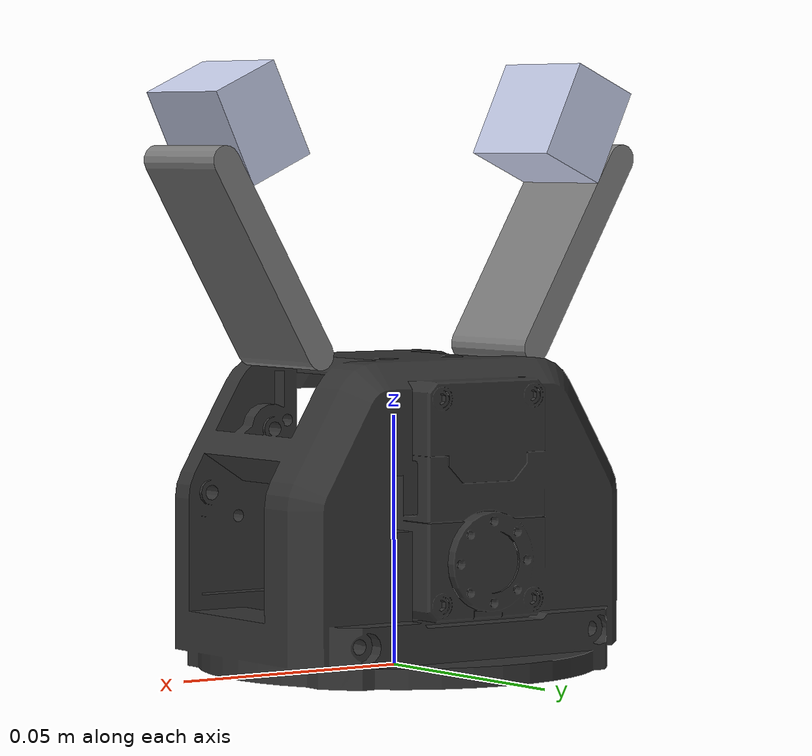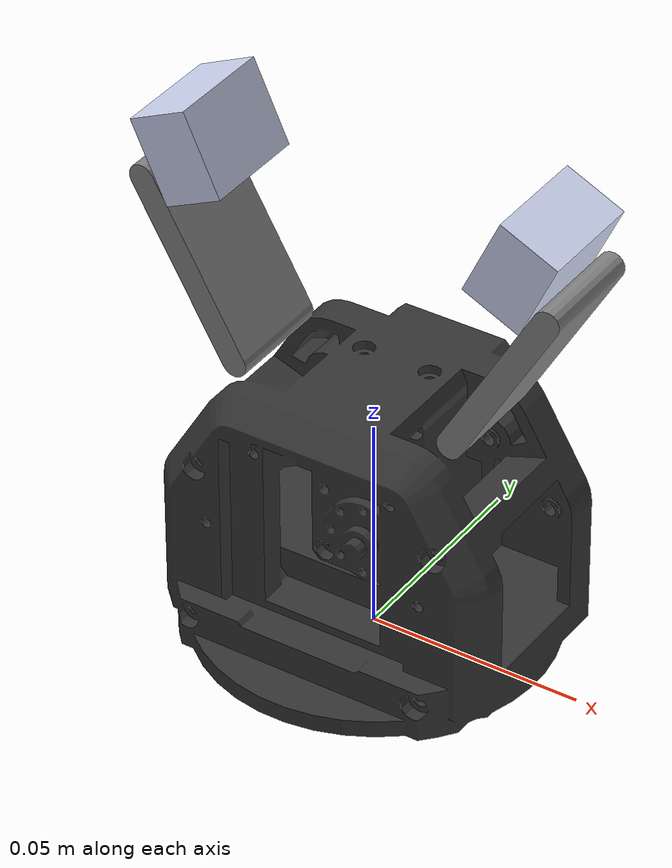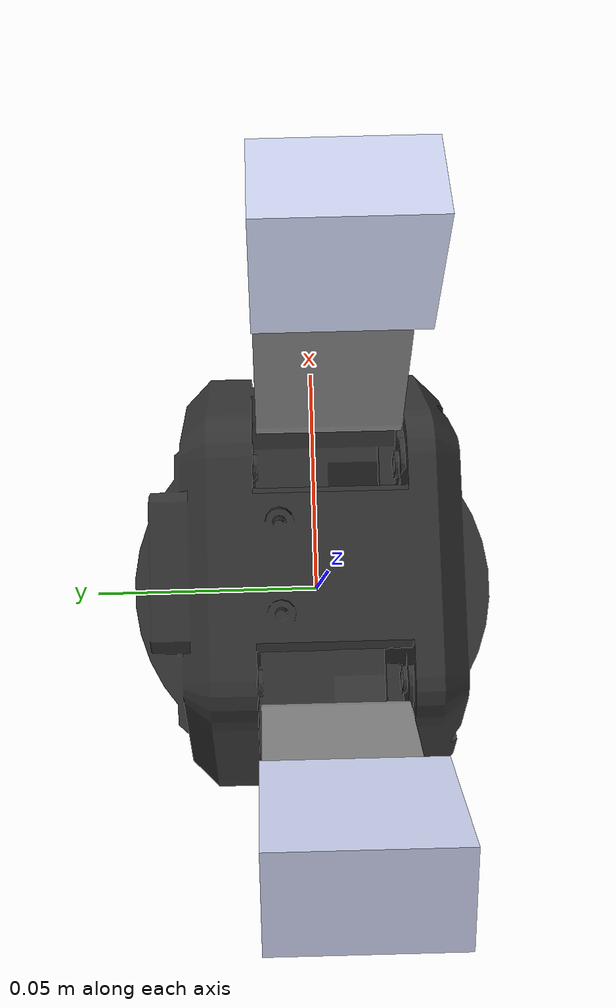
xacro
<?xml version="1.0"?>

<robot xmlns:xacro="http://www.ros.org/wiki/xacro" name="rebel_gripper">
    <xacro:include filename="$(find rebel_gripper)/urdf/rebel_gripper_macro.xacro" />

    <!-- parameters -->
    <xacro:arg name="prefix" default="" />
    <xacro:arg name="gripper_orientation" default="0.0" />

    <!-- create base link -->
    <link name="world" />

    <!-- gripper -->
    <xacro:rebel_gripper prefix="$(arg prefix)" parent="world"
        orientation="$(arg gripper_orientation)">
        <origin xyz="0.0 0.0 0.0" rpy="0.0 0.0 0.0" />
    </xacro:rebel_gripper>
</robot>

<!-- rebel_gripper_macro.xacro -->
<robot xmlns:xacro="http://www.ros.org/wiki/xacro" name="robot_name">

    <!-- ===================================
         ==      Material Definitions     ==
         =================================== -->
    <material name="gripper_grey">
        <color rgba="0.5 0.5 0.5 1.0" />
    </material>

    <material name="gripper_dark">
        <color rgba="0.2 0.2 0.2 1.0" />I </material>

    <material name="finger_color">
        <color rgba="0.79 0.82 0.93 1.0" />
    </material>

    <material name="joint_marker">
        <color rgba="1.0 0.0 0.0 0.5" />
    </material>

    <!-- ===================================
         ==       Gripper Parameters      ==
         =================================== -->

    <!-- Parameter from trajectory analysis -->

    <xacro:property name="finger_length" value="0.04593" />
    <!-- Rotation centers relative to gripper base -->
    <xacro:property name="left_center_x" value="-0.02" />
    <xacro:property name="left_center_y" value="0.06281" />
    <xacro:property name="left_center_z" value="0.018875" />
    <xacro:property name="right_center_x" value="0.02" />
    <xacro:property name="right_center_y" value="0.06281" />
    <xacro:property name="right_center_z" value="0.018625" />

    <!-- Joint angle limits (in radians) -->
    <!-- Closed: Z = 107.4mm, Fingertip distance = 3.5mm | Open: Z = 83mm, Fingertip distance =
    108mm -->
    <xacro:property name="left_angle_open" value="2.686" />
    <xacro:property name="left_angle_closed" value="1.329" />
    <xacro:property name="right_angle_open" value="0.455" />
    <xacro:property name="right_angle_closed" value="1.813" />

    <!-- Motor: 0° -> open, 1.357 rad (77.75°) -> closed -->
    <xacro:property name="motor_range" value="1.357" />

    <!-- ===================================
         ==         Gripper Macro         ==
         =================================== -->
    <xacro:macro name="rebel_gripper"
        params="
        prefix=''
        parent
        orientation='0.0'
        *origin">

        <!-- ===================================
             ==         Gripper Links         ==
             =================================== -->

        <!-- Virtual motor output link -->
        <link name="${prefix}motor_output" />

        <!-- Exact center of the bootom of the gripper -->

        <!-- Gripper Base Link -->
        <link name="${prefix}gripper_base">
            <visual>
                <origin xyz="0.0 0.0 0.0" rpy="0.0 0.0 0.0" />
                <geometry>
                    <mesh filename="package://rebel_gripper/meshes/gripper_base.STL" />
                </geometry>
                <material name="gripper_dark" />
            </visual>
            <collision>
                <origin xyz="0.0 0.0 0.0" rpy="0.0 0.0 0.0" />
                <geometry>
                    <mesh filename="package://rebel_gripper/meshes/gripper_base.STL" />
                </geometry>
            </collision>
        </link>

        <!-- Right Gripper Arm Link -->
        <link name="${prefix}right_gripper_arm_link">
            <visual>
                <origin xyz="-0.003 -0.0125 -0.003" rpy="0.0 0.0 0.0" />
                <geometry>
                    <mesh filename="package://rebel_gripper/meshes/gripper_arm_link.STL"
                        scale="0.001 0.001 0.00105" />
                </geometry>
                <material name="gripper_grey" />
            </visual>
            <collision>
                <origin xyz="-0.003 -0.0125 -0.003" rpy="0.0 0.0 0.0" />
                <geometry>
                    <mesh filename="package://rebel_gripper/meshes/gripper_arm_link.STL"
                        scale="0.001 0.001 0.00105" />
                </geometry>
            </collision>
        </link>

        <!-- Right Finger Arm -->
        <link name="${prefix}right_finger_arm" />

        <!-- Right Fingertip -->
        <link name="${prefix}right_fingertip">
            <visual>
                <origin xyz="0.0 0.0 0.0" rpy="0.0 0.0 0.0" />
                <geometry>
                    <box size="0.020 0.0145 0.025" />
                </geometry>
                <material name="finger_color" />
            </visual>
            <collision>
                <origin xyz="0.0 0.0 0.0" rpy="0.0 0.0 0.0" />
                <geometry>
                    <box size="0.020 0.0145 0.025" />
                </geometry>
            </collision>
        </link>

        <!-- Virtual Joint for center of right fingertip-plane -->
        <link name="${prefix}right_fingertip_center" />

        <!-- Left Gripper Arm Link -->
        <link name="${prefix}left_gripper_arm_link">
            <visual>
                <origin xyz="-0.003 -0.0125 -0.003" rpy="0.0 0.0 0.0" />
                <geometry>
                    <mesh filename="package://rebel_gripper/meshes/gripper_arm_link.STL"
                        scale="0.001 0.001 0.00105" />
                </geometry>
                <material name="gripper_grey" />
            </visual>
            <collision>
                <origin xyz="-0.003 -0.0125 -0.003" rpy="0.0 0.0 0.0" />
                <geometry>
                    <mesh filename="package://rebel_gripper/meshes/gripper_arm_link.STL"
                        scale="0.001 0.001 0.00105" />
                </geometry>
            </collision>
        </link>

        <!-- Left Finger Arm -->
        <link name="${prefix}left_finger_arm" />

        <!-- Left Fingertip -->
        <link name="${prefix}left_fingertip">
            <visual>
                <origin xyz="0.0 0.0 0.0" rpy="0.0 0.0 0.0" />
                <geometry>
                    <box size="0.020 0.0145 0.025" />
                </geometry>
                <material name="finger_color" />
            </visual>
            <collision>
                <origin xyz="0.0 0.0 0.0" rpy="0.0 0.0 0.0" />
                <geometry>
                    <box size="0.020 0.0145 0.025" />
                </geometry>
            </collision>
        </link>

        <!-- Virtual Joint for center of left fingertip-plane -->
        <link name="${prefix}left_fingertip_center" />

        <!-- TCP (Tool Center Point) as tf for visualization -->
        <link name="${prefix}tcp">
        </link>

        <!-- Link used for mounting -->
        <link name="${prefix}gripper_mount_link" />

        <!-- ===================================
             ==        Gripper Joints         ==
             =================================== -->

        <!-- [parent] -> [gripper_mount_link] (user's mounting transform) -->
        <joint name="${prefix}attachment_gripper_mount-joint" type="fixed">
            <parent link="${parent}" />
            <child link="${prefix}gripper_mount_link" />
            <xacro:insert_block name="origin" />
        </joint>

        <!-- [gripper_mount_link] -> [gripper_base] (internal offset + orientation) -->
        <joint name="${prefix}gripper_mount_gripper_base-joint" type="fixed">
            <parent link="${prefix}gripper_mount_link" />
            <child link="${prefix}gripper_base" />
            <origin xyz="0.0 -0.01875 0.004" rpy="0.0 ${pi/180*orientation} 0.0" />
        </joint>

        <!-- gripper_base -> motor_output -->
        <joint name="${prefix}gripper_base_motor-joint" type="revolute">
            <parent link="${prefix}gripper_base" />
            <child link="${prefix}motor_output" />
            <origin xyz="0.0 0.0 0.0" rpy="0.0 0.0 0.0" />
            <axis xyz="0 0 1" />
            <limit lower="0" upper="${motor_range}" effort="10.0" velocity="0.3" />
        </joint>

        <!-- ===================================
             ==      Left Finger Joints       ==
             =================================== -->

        <!-- [gripper_base] -> [left_finger_arm] -->
        <joint name="${prefix}gripper_base_left_finger_arm-joint" type="revolute">
            <parent link="${prefix}gripper_base" />
            <child link="${prefix}left_finger_arm" />
            <origin xyz="${left_center_x} ${left_center_z} ${left_center_y}" rpy="1.5708 0 0" />
            <axis xyz="0 0 1" />
            <limit lower="${left_angle_closed}" upper="${left_angle_open}" effort="10.0"
                velocity="0.3" />
            <mimic joint="${prefix}gripper_base_motor-joint" multiplier="-1.0"
                offset="${left_angle_open}" />
        </joint>

        <!-- [left_finger_arm] -> [left_fingertip] -->
        <joint name="${prefix}left_finger_arm_left_fingertip-joint" type="revolute">
            <parent link="${prefix}left_finger_arm" />
            <child link="${prefix}left_fingertip" />
            <origin xyz="${finger_length} 0 0" rpy="0 0 0" />
            <axis xyz="0 0 1" />
            <limit lower="-1.115" upper="0.242" effort="10.0" velocity="0.3" />
            <mimic joint="${prefix}gripper_base_left_finger_arm-joint" multiplier="-1.0"
                offset="1.5708" />
        </joint>

        <!-- [gripper_base] -> [left_gripper_arm_link] -->
        <joint name="${prefix}left_gripper_arm_link-joint" type="revolute">
            <parent link="${prefix}gripper_base" />
            <child link="${prefix}left_gripper_arm_link" />
            <origin xyz="${left_center_x} ${left_center_z} ${left_center_y}" rpy="0 1.6581 ${pi}" />
            <axis xyz="0 -1 0" />
            <limit lower="${-left_angle_open + pi}" upper="${-left_angle_closed + pi}" effort="10.0"
                velocity="0.3" />
            <mimic joint="${prefix}gripper_base_left_finger_arm-joint" multiplier="-1.0"
                offset="${pi}" />
        </joint>

        <!-- [left_fingertip] -> [left_fingertip_center] -->
        <joint name="${prefix}left_fingertip_to_left_fingertip_center-joint" type="fixed">
            <parent link="${prefix}left_fingertip" />
            <child link="${prefix}left_fingertip_center" />
            <origin xyz="0 -0.00725 0" rpy="${pi/2} 0 0" />
        </joint>

        <!-- ===================================
             ==     Right Finger Joints       ==
             =================================== -->

        <!-- [gripper_base] -> [right_finger_arm] -->
        <joint name="${prefix}gripper_base_right_finger_arm-joint" type="revolute">
            <parent link="${prefix}gripper_base" />
            <child link="${prefix}right_finger_arm" />
            <origin xyz="${right_center_x} ${right_center_z} ${right_center_y}" rpy="1.5708 0 0" />
            <axis xyz="0 0 1" />
            <limit lower="${right_angle_open}" upper="${right_angle_closed}" effort="10.0"
                velocity="0.3" />
            <mimic joint="${prefix}gripper_base_left_finger_arm-joint" multiplier="-1.0"
                offset="3.1416" />
        </joint>

        <!-- [right_finger_arm] -> [right_fingertip] -->
        <joint name="${prefix}right_fingertip-joint" type="revolute">
            <parent link="${prefix}right_finger_arm" />
            <child link="${prefix}right_fingertip" />
            <origin xyz="${finger_length} 0 0" rpy="0 0 0" />
            <axis xyz="0 0 1" />
            <limit lower="-0.242" upper="1.116" effort="10.0" velocity="0.3" />
            <mimic joint="${prefix}gripper_base_right_finger_arm-joint" multiplier="-1.0"
                offset="1.5708" />
        </joint>

        <!-- [gripper_base] -> [right_gripper_arm_link] -->
        <joint name="${prefix}right_gripper_arm_link-joint" type="revolute">
            <parent link="${prefix}gripper_base" />
            <child link="${prefix}right_gripper_arm_link" />
            <origin xyz="${right_center_x} ${right_center_z} ${right_center_y}" rpy="0 1.6581 0" />
            <axis xyz="0 -1 0" />
            <limit lower="${right_angle_open}" upper="${right_angle_closed}" effort="10.0"
                velocity="0.3" />
            <mimic joint="${prefix}gripper_base_left_finger_arm-joint" multiplier="-1.0"
                offset="3.1416" />
        </joint>

        <!-- [right_fingertip] -> [right_fingertip_center] -->
        <joint name="${prefix}right_fingertip_right_fingertip_center-joint" type="fixed">
            <parent link="${prefix}right_fingertip" />
            <child link="${prefix}right_fingertip_center" />
            <origin xyz="0 0.00725 0" rpy="-${pi/2} 0 0" />
        </joint>

        <!-- [gripper_base] -> [tcp] -->
        <joint name="${prefix}base_to_tcp" type="fixed">
            <parent link="${prefix}gripper_base" />
            <child link="${prefix}tcp" />
            <origin xyz="0 0.01875 0.1074" rpy="0 0 0" />
        </joint>

    </xacro:macro>

</robot>
